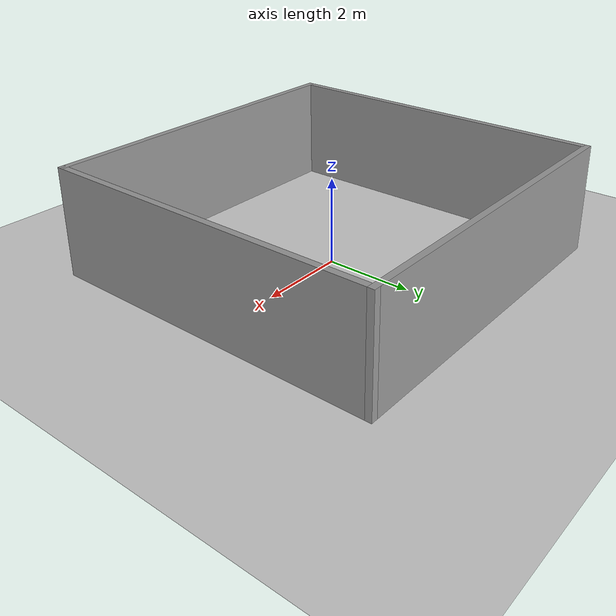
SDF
<sdf version="1.6">
 <world name="default">
  <light name="sun" type="directional">
   <pose>0 0 10 0 -0 0</pose>
   <diffuse>0.8 0.8 0.8 1</diffuse>
   <specular>0.2 0.2 0.2 1</specular>
   <attenuation>
    <range>1000</range>
    <constant>0.9</constant>
    <linear>0.01</linear>
    <quadratic>0.001</quadratic>
   </attenuation>
   <direction>-0.5 0.1 -0.9</direction>
  </light>
  <model name="ground_plane">
   <static>1</static>
   <link name="link">
    <collision name="collision">
     <geometry><plane><normal>0 0 1</normal><size>100 100</size></plane></geometry>
     <surface>
      <contact><collide_bitmask>65535</collide_bitmask></contact>
      <friction><ode><mu>100</mu><mu2>50</mu2></ode></friction>
     </surface>
    </collision>
    <visual name="visual">
     <cast_shadows>0</cast_shadows>
     <geometry><plane><normal>0 0 1</normal><size>100 100</size></plane></geometry>
     <material>
      <script><uri>file://media/materials/scripts/gazebo.material</uri><name>Gazebo/Grey</name></script>
     </material>
    </visual>
   </link>
  </model>
  <physics name="default_physics" default="0" type="ode">
   <real_time_update_rate>1000</real_time_update_rate>
   <max_step_size>0.001</max_step_size>
   <real_time_factor>1</real_time_factor>
   <ode>
    <solver>
     <type>quick</type>
     <iters>150</iters>
     <precon_iters>0</precon_iters>
     <sor>1.4</sor>
     <use_dynamic_moi_rescaling>1</use_dynamic_moi_rescaling>
    </solver>
    <constraints>
     <cfm>1e-05</cfm>
     <erp>0.2</erp>
     <contact_max_correcting_vel>2000</contact_max_correcting_vel>
     <contact_surface_layer>0.01</contact_surface_layer>
    </constraints>
   </ode>
  </physics>
  <scene><ambient>0.4 0.4 0.4 1</ambient><background>0.7 0.7 0.7 1</background><shadows>1</shadows></scene>
  <gravity>0 0 -9.8</gravity>
  <magnetic_field>6e-06 2.3e-05 -4.2e-05</magnetic_field>
  <atmosphere type="adiabatic"/>
  <spherical_coordinates>
   <surface_model>EARTH_WGS84</surface_model>
   <latitude_deg>0</latitude_deg>
   <longitude_deg>0</longitude_deg>
   <elevation>0</elevation>
   <heading_deg>0</heading_deg>
  </spherical_coordinates>
  <model name="Untitled">
   <pose>-0.03646 -0.00143 0 0 -0 0</pose>
   <link name="Wall_10">
    <collision name="Wall_10_Collision">
     <geometry><box><size>8 0.15 2.5</size></box></geometry>
     <pose>0 0 1.25 0 -0 0</pose>
    </collision>
    <visual name="Wall_10_Visual">
     <pose>0 0 1.25 0 -0 0</pose>
     <geometry><box><size>8 0.15 2.5</size></box></geometry>
     <material>
      <script><uri>file://media/materials/scripts/gazebo.material</uri><name>Gazebo/Grey</name></script>
      <ambient>1 1 1 1</ambient>
     </material>
     <meta><layer>0</layer></meta>
    </visual>
    <pose>-0 -3.925 0 0 -0 0</pose>
   </link>
   <link name="Wall_11">
    <collision name="Wall_11_Collision">
     <geometry><box><size>8 0.15 2.5</size></box></geometry>
     <pose>0 0 1.25 0 -0 0</pose>
    </collision>
    <visual name="Wall_11_Visual">
     <pose>0 0 1.25 0 -0 0</pose>
     <geometry><box><size>8 0.15 2.5</size></box></geometry>
     <material>
      <script><uri>file://media/materials/scripts/gazebo.material</uri><name>Gazebo/Grey</name></script>
      <ambient>1 1 1 1</ambient>
     </material>
     <meta><layer>0</layer></meta>
    </visual>
    <pose>3.925 -0 0 0 -0 1.5708</pose>
   </link>
   <link name="Wall_12">
    <collision name="Wall_12_Collision">
     <geometry><box><size>8 0.15 2.5</size></box></geometry>
     <pose>0 0 1.25 0 -0 0</pose>
    </collision>
    <visual name="Wall_12_Visual">
     <pose>0 0 1.25 0 -0 0</pose>
     <geometry><box><size>8 0.15 2.5</size></box></geometry>
     <material>
      <script><uri>file://media/materials/scripts/gazebo.material</uri><name>Gazebo/Grey</name></script>
      <ambient>1 1 1 1</ambient>
     </material>
     <meta><layer>0</layer></meta>
    </visual>
    <pose>-0 3.925 0 0 -0 3.14159</pose>
   </link>
   <link name="Wall_9">
    <collision name="Wall_9_Collision">
     <geometry><box><size>8 0.15 2.5</size></box></geometry>
     <pose>0 0 1.25 0 -0 0</pose>
    </collision>
    <visual name="Wall_9_Visual">
     <pose>0 0 1.25 0 -0 0</pose>
     <geometry><box><size>8 0.15 2.5</size></box></geometry>
     <material>
      <script><uri>file://media/materials/scripts/gazebo.material</uri><name>Gazebo/Grey</name></script>
      <ambient>1 1 1 1</ambient>
     </material>
     <meta><layer>0</layer></meta>
    </visual>
    <pose>-3.925 -0 0 0 -0 -1.5708</pose>
   </link>
   <static>1</static>
  </model>
  <audio><device>default</device></audio>
  <model name="beer">
   <link name="link">
    <pose>0 0 0.115 0 -0 0</pose>
    <inertial>
     <mass>100.066</mass>
     <inertia><ixx>2.56916</ixx><ixy>0</ixy><ixz>0</ixz><iyy>2.56916</iyy><iyz>0</iyz><izz>1.32125</izz></inertia>
    </inertial>
    <gravity>0</gravity>
    <visual name="visual">
     <geometry><cylinder><radius>0.162504</radius><length>0.478406</length></cylinder></geometry>
     <material>
      <script>
       <uri>model://beer/materials/scripts</uri>
       <uri>model://beer/materials/textures</uri>
       <name>Beer/Diffuse</name>
      </script>
      <shader type="vertex"><normal_map>__default__</normal_map></shader>
     </material>
    </visual>
    <collision name="collision">
     <geometry><cylinder><radius>0.162504</radius><length>0.478406</length></cylinder></geometry>
     <surface>
      <friction>
       <ode><mu>1</mu><mu2>1</mu2><fdir1>0 0 0</fdir1><slip1>0</slip1><slip2>0</slip2></ode>
       <torsional>
        <coefficient>1</coefficient>
        <patch_radius>0</patch_radius>
        <surface_radius>0</surface_radius>
        <use_patch_radius>1</use_patch_radius>
        <ode><slip>0</slip></ode>
       </torsional>
      </friction>
      <bounce><restitution_coefficient>0</restitution_coefficient><threshold>1e+06</threshold></bounce>
      <contact>
       <collide_without_contact>0</collide_without_contact>
       <collide_without_contact_bitmask>1</collide_without_contact_bitmask>
       <collide_bitmask>1</collide_bitmask>
       <ode>
        <soft_cfm>0</soft_cfm>
        <soft_erp>0.2</soft_erp>
        <kp>1e+13</kp>
        <kd>1</kd>
        <max_vel>0.01</max_vel>
        <min_depth>0</min_depth>
       </ode>
       <bullet>
        <split_impulse>1</split_impulse>
        <split_impulse_penetration_threshold>-0.01</split_impulse_penetration_threshold>
        <soft_cfm>0</soft_cfm>
        <soft_erp>0.2</soft_erp>
        <kp>1e+13</kp>
        <kd>1</kd>
       </bullet>
      </contact>
     </surface>
    </collision>
   </link>
   <static>0</static>
   <pose>2.0123 3.01161 0.124203 0 -0 0</pose>
  </model>
  <model name="cricket_ball">
   <link name="link">
    <inertial>
     <mass>100.651</mass>
     <inertia><ixx>3.34546</ixx><ixy>0</ixy><ixz>0</ixz><iyy>3.34546</iyy><iyz>0</iyz><izz>3.34546</izz></inertia>
    </inertial>
    <velocity_decay><linear>0</linear><angular>0.005</angular></velocity_decay>
    <gravity>0</gravity>
    <visual name="visual">
     <geometry><sphere><radius>0.288263</radius></sphere></geometry>
     <material>
      <script><uri>file://media/materials/scripts/gazebo.material</uri><name>Gazebo/Red</name></script>
      <shader type="vertex"><normal_map>__default__</normal_map></shader>
      <ambient>1 0 0 1</ambient>
      <diffuse>1 0 0 1</diffuse>
      <specular>0.1 0.1 0.1 1</specular>
      <emissive>0 0 0 1</emissive>
     </material>
    </visual>
    <collision name="collision">
     <geometry><sphere><radius>0.288263</radius></sphere></geometry>
     <surface>
      <friction>
       <ode><mu>1</mu><mu2>1</mu2><fdir1>0 0 0</fdir1><slip1>0</slip1><slip2>0</slip2></ode>
       <torsional>
        <coefficient>1</coefficient>
        <patch_radius>0</patch_radius>
        <surface_radius>0.01</surface_radius>
        <use_patch_radius>0</use_patch_radius>
        <ode><slip>0</slip></ode>
       </torsional>
      </friction>
      <bounce><restitution_coefficient>0</restitution_coefficient><threshold>1e+06</threshold></bounce>
      <contact>
       <collide_without_contact>0</collide_without_contact>
       <collide_without_contact_bitmask>1</collide_without_contact_bitmask>
       <collide_bitmask>1</collide_bitmask>
       <ode>
        <soft_cfm>0</soft_cfm>
        <soft_erp>0.2</soft_erp>
        <kp>100000</kp>
        <kd>100</kd>
        <max_vel>100</max_vel>
        <min_depth>0.001</min_depth>
       </ode>
       <bullet>
        <split_impulse>1</split_impulse>
        <split_impulse_penetration_threshold>-0.01</split_impulse_penetration_threshold>
        <soft_cfm>0</soft_cfm>
        <soft_erp>0.2</soft_erp>
        <kp>100000</kp>
        <kd>100</kd>
       </bullet>
      </contact>
     </surface>
    </collision>
   </link>
   <static>1</static>
   <pose>2.00421 -1.48541 0.243693 0 -0 0</pose>
  </model>
 </world>
</sdf>
